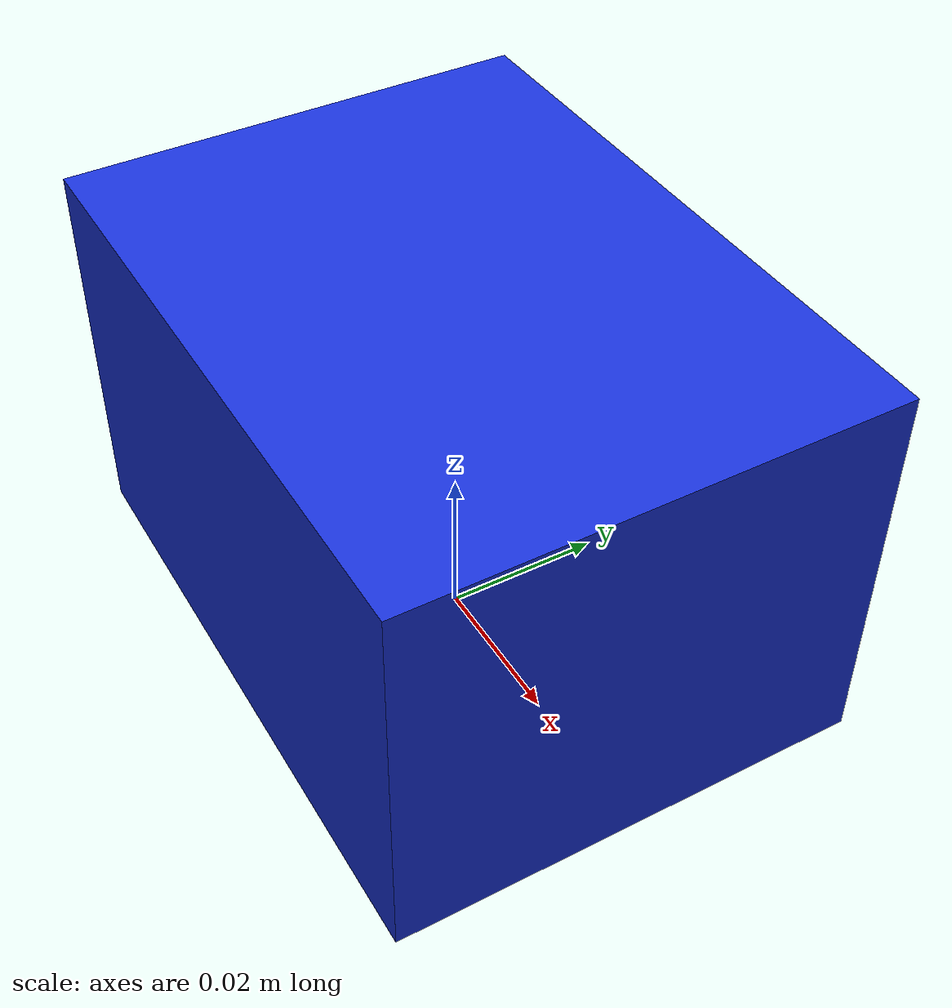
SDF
<?xml version="1.0"?>
<sdf version="1.9">
  <model name="blue_box">
    <static>true</static>
    <link name="link">
      <collision name="collision">
        <pose>0 0 0.025 0 0 0</pose>
        <geometry><box><size>0.08 0.06 0.05</size></box></geometry>
      </collision>
      <visual name="visual">
        <pose>0 0 0.025 0 0 0</pose>
        <geometry><box><size>0.08 0.06 0.05</size></box></geometry>
        <material>
          <ambient>0.1 0.2 0.85 1</ambient>
          <diffuse>0.1 0.2 0.85 1</diffuse>
          <specular>0.3 0.3 0.3 1</specular>
        </material>
      </visual>
    </link>
  </model>
</sdf>
